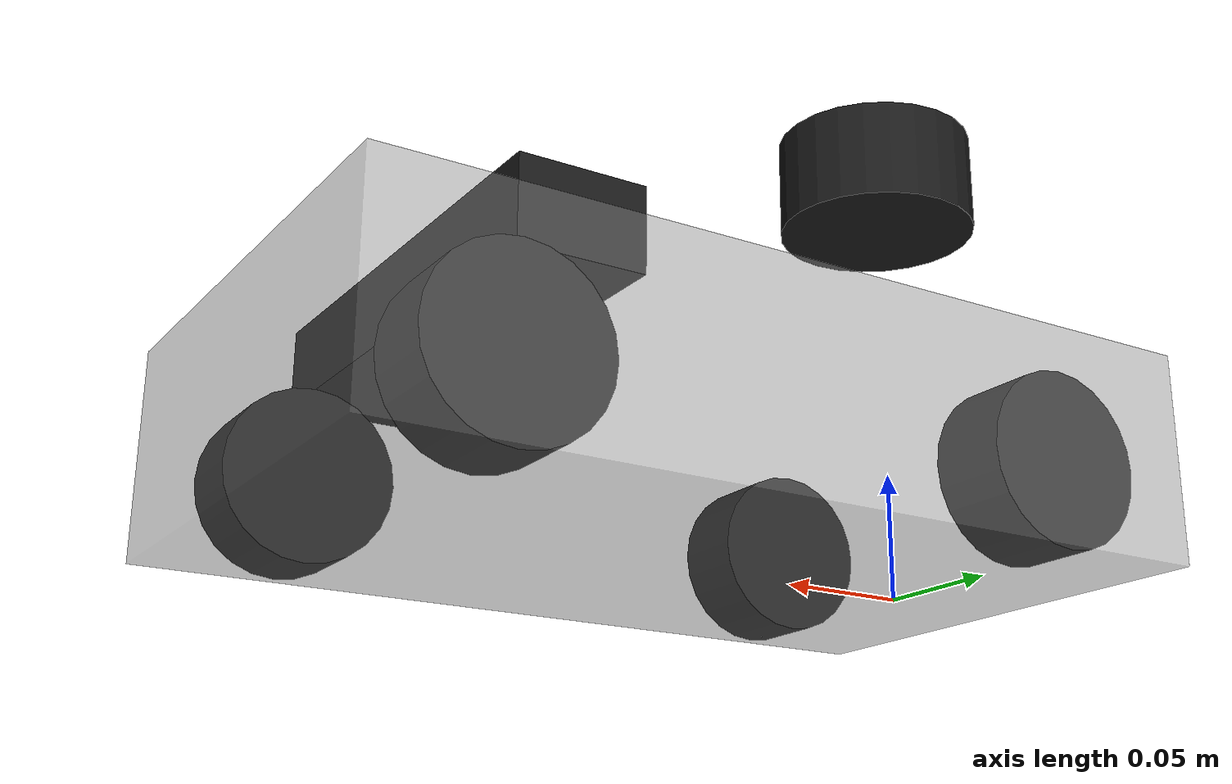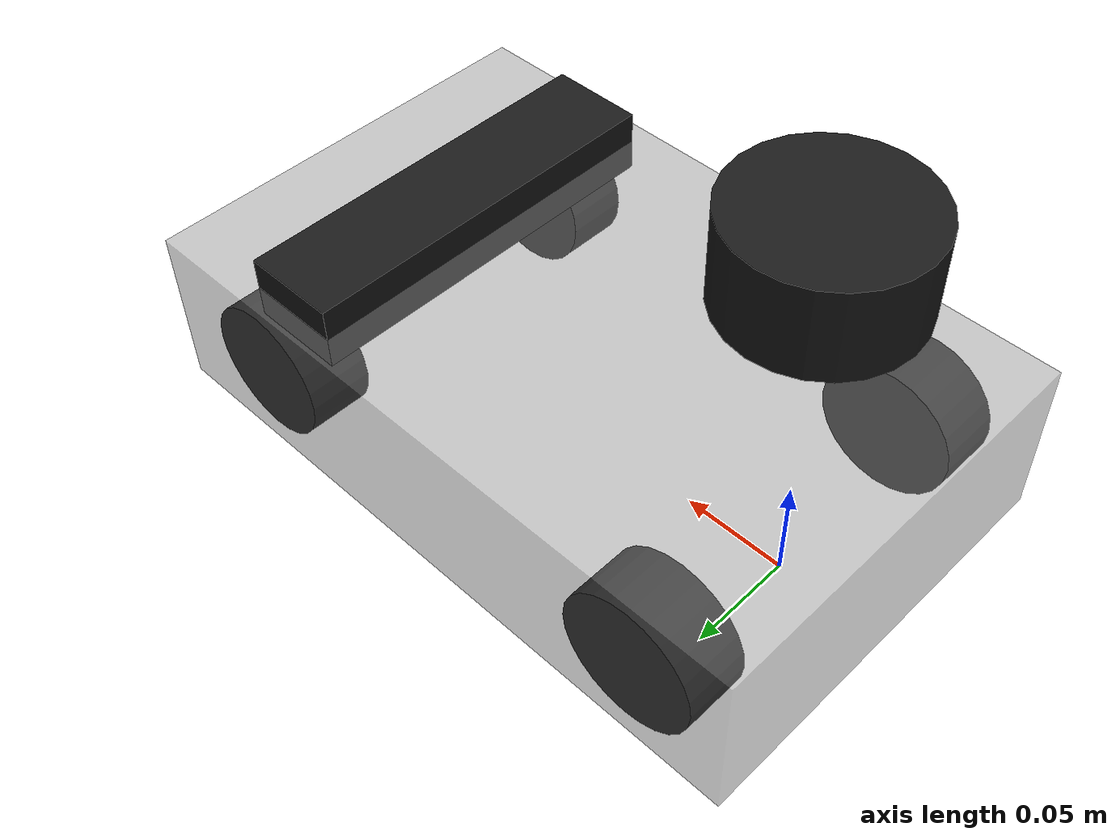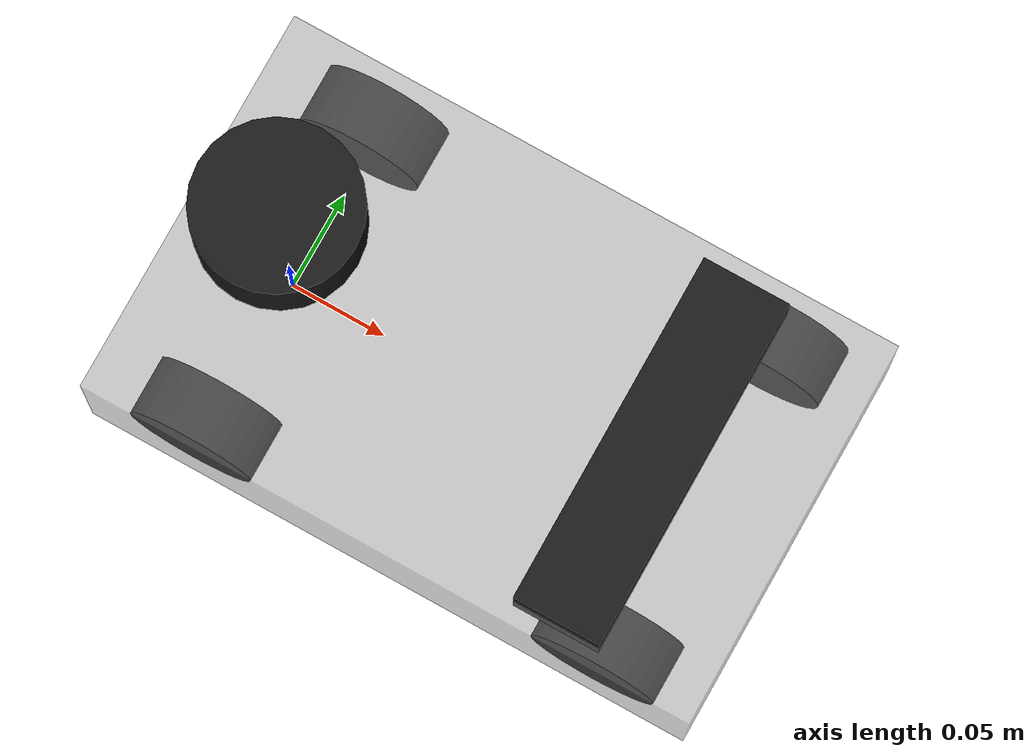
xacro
<?xml version="1.0"?>
<robot name="ackermann_robot" xmlns:xacro="http://www.ros.org/wiki/xacro">
  <xacro:property name="wheelbase" value="0.215"/>
  <xacro:property name="track" value="0.16"/>
  <xacro:property name="wheel_radius" value="0.0325"/>
  <xacro:property name="wheel_width" value="0.03"/>
  <xacro:property name="chassis_length" value="0.32"/>
  <xacro:property name="chassis_width" value="0.20"/>
  <xacro:property name="chassis_height" value="0.08"/>
  <xacro:property name="chassis_center_x" value="${wheelbase / 2.0}"/>
  <xacro:property name="camera_x" value="${wheelbase}"/>
  <xacro:property name="camera_z" value="0.08"/>
  <xacro:property name="lidar_radius" value="0.04"/>
  <xacro:property name="lidar_height" value="0.04"/>
  <xacro:property name="lidar_x" value="0.0"/>
  <xacro:property name="lidar_z" value="0.175"/>

  <material name="gray">
    <color rgba="0.5 0.5 0.5 0.45"/>
  </material>
  <material name="black">
    <color rgba="0.1 0.1 0.1 1.0"/>
  </material>

  <link name="base_footprint"/>

  <joint name="base_footprint_joint" type="fixed">
    <parent link="base_footprint"/>
    <child link="base_link"/>
    <origin xyz="0 0 0" rpy="0 0 0"/>
  </joint>

  <link name="base_link">
    <visual>
      <origin xyz="${chassis_center_x} 0 ${chassis_height / 2.0}" rpy="0 0 0"/>
      <geometry>
        <box size="${chassis_length} ${chassis_width} ${chassis_height}"/>
      </geometry>
      <material name="gray"/>
    </visual>
    <collision>
      <origin xyz="${chassis_center_x} 0 ${chassis_height / 2.0}" rpy="0 0 0"/>
      <geometry>
        <box size="${chassis_length} ${chassis_width} ${chassis_height}"/>
      </geometry>
    </collision>
    <inertial>
      <origin xyz="${chassis_center_x} 0 ${chassis_height / 2.0}" rpy="0 0 0"/>
      <mass value="5.0"/>
      <inertia ixx="0.07" ixy="0.0" ixz="0.0" iyy="0.10" iyz="0.0" izz="0.12"/>
    </inertial>
  </link>

  <link name="front_left_steer_link"/>
  <link name="front_right_steer_link"/>

  <link name="front_left_wheel_link">
    <visual>
      <origin xyz="0 0 0" rpy="1.5708 0 0"/>
      <geometry>
        <cylinder radius="${wheel_radius}" length="${wheel_width}"/>
      </geometry>
      <material name="black"/>
    </visual>
  </link>

  <link name="front_right_wheel_link">
    <visual>
      <origin xyz="0 0 0" rpy="1.5708 0 0"/>
      <geometry>
        <cylinder radius="${wheel_radius}" length="${wheel_width}"/>
      </geometry>
      <material name="black"/>
    </visual>
  </link>

  <link name="rear_left_wheel_link">
    <visual>
      <origin xyz="0 0 0" rpy="1.5708 0 0"/>
      <geometry>
        <cylinder radius="${wheel_radius}" length="${wheel_width}"/>
      </geometry>
      <material name="black"/>
    </visual>
  </link>

  <link name="rear_right_wheel_link">
    <visual>
      <origin xyz="0 0 0" rpy="1.5708 0 0"/>
      <geometry>
        <cylinder radius="${wheel_radius}" length="${wheel_width}"/>
      </geometry>
      <material name="black"/>
    </visual>
  </link>

  <joint name="front_left_steer_joint" type="revolute">
    <parent link="base_link"/>
    <child link="front_left_steer_link"/>
    <origin xyz="${wheelbase} ${track / 2.0} ${wheel_radius}" rpy="0 0 0"/>
    <axis xyz="0 0 1"/>
    <limit lower="-0.6" upper="0.6" effort="30.0" velocity="2.0"/>
  </joint>

  <joint name="front_right_steer_joint" type="revolute">
    <parent link="base_link"/>
    <child link="front_right_steer_link"/>
    <origin xyz="${wheelbase} ${-track / 2.0} ${wheel_radius}" rpy="0 0 0"/>
    <axis xyz="0 0 1"/>
    <limit lower="-0.6" upper="0.6" effort="30.0" velocity="2.0"/>
  </joint>

  <joint name="front_left_wheel_joint" type="continuous">
    <parent link="front_left_steer_link"/>
    <child link="front_left_wheel_link"/>
    <origin xyz="0 0 0" rpy="0 0 0"/>
    <axis xyz="0 1 0"/>
  </joint>

  <joint name="front_right_wheel_joint" type="continuous">
    <parent link="front_right_steer_link"/>
    <child link="front_right_wheel_link"/>
    <origin xyz="0 0 0" rpy="0 0 0"/>
    <axis xyz="0 1 0"/>
  </joint>

  <joint name="rear_left_wheel_joint" type="continuous">
    <parent link="base_link"/>
    <child link="rear_left_wheel_link"/>
    <origin xyz="0 ${track / 2.0} ${wheel_radius}" rpy="0 0 0"/>
    <axis xyz="0 1 0"/>
  </joint>

  <joint name="rear_right_wheel_joint" type="continuous">
    <parent link="base_link"/>
    <child link="rear_right_wheel_link"/>
    <origin xyz="0 ${-track / 2.0} ${wheel_radius}" rpy="0 0 0"/>
    <axis xyz="0 1 0"/>
  </joint>

  <link name="camera_mount_link">
    <visual>
      <origin xyz="-0.0225 0 0" rpy="0 0 0"/>
      <geometry>
        <box size="0.045 0.18 0.03"/>
      </geometry>
      <material name="black"/>
    </visual>
  </link>

  <joint name="camera_joint" type="fixed">
    <parent link="base_link"/>
    <child link="camera_mount_link"/>
    <origin xyz="${camera_x} 0 ${camera_z}" rpy="0 0 0"/>
  </joint>

  <!-- Car-level camera frame (physical mount center). -->
  <link name="camera_link"/>
  <joint name="camera_mount_to_camera_joint" type="fixed">
    <parent link="camera_mount_link"/>
    <child link="camera_link"/>
    <origin xyz="0 0 0" rpy="0 0 0"/>
  </joint>

  <!-- Optical frame follows REP-103: X right, Y down, Z forward. -->
  <link name="camera_optical_frame"/>
  <joint name="camera_to_optical_joint" type="fixed">
    <parent link="camera_link"/>
    <child link="camera_optical_frame"/>
    <origin xyz="0 0 0" rpy="-1.57079632679 0 -1.57079632679"/>
  </joint>

  <link name="lidar_link">
    <visual>
      <origin xyz="0 0 0" rpy="0 0 0"/>
      <geometry>
        <cylinder radius="${lidar_radius}" length="${lidar_height}"/>
      </geometry>
      <material name="black"/>
    </visual>
  </link>

  <joint name="lidar_joint" type="fixed">
    <parent link="base_link"/>
    <child link="lidar_link"/>
    <origin xyz="${lidar_x} 0 ${lidar_z}" rpy="0 0 0"/>
  </joint>

  <link name="lidar_scan_frame"/>
  <joint name="lidar_scan_joint" type="fixed">
    <parent link="lidar_link"/>
    <child link="lidar_scan_frame"/>
    <origin xyz="0 0 0" rpy="0 0 3.14159265359"/>
  </joint>

  <ros2_control name="ackermann_mock_system" type="system">
    <hardware>
      <plugin>mock_components/GenericSystem</plugin>
    </hardware>

    <joint name="front_left_steer_joint">
      <command_interface name="position"/>
      <state_interface name="position"/>
      <state_interface name="velocity"/>
    </joint>

    <joint name="front_right_steer_joint">
      <command_interface name="position"/>
      <state_interface name="position"/>
      <state_interface name="velocity"/>
    </joint>

    <joint name="rear_left_wheel_joint">
      <command_interface name="velocity"/>
      <state_interface name="position"/>
      <state_interface name="velocity"/>
    </joint>

    <joint name="rear_right_wheel_joint">
      <command_interface name="velocity"/>
      <state_interface name="position"/>
      <state_interface name="velocity"/>
    </joint>
  </ros2_control>
</robot>
